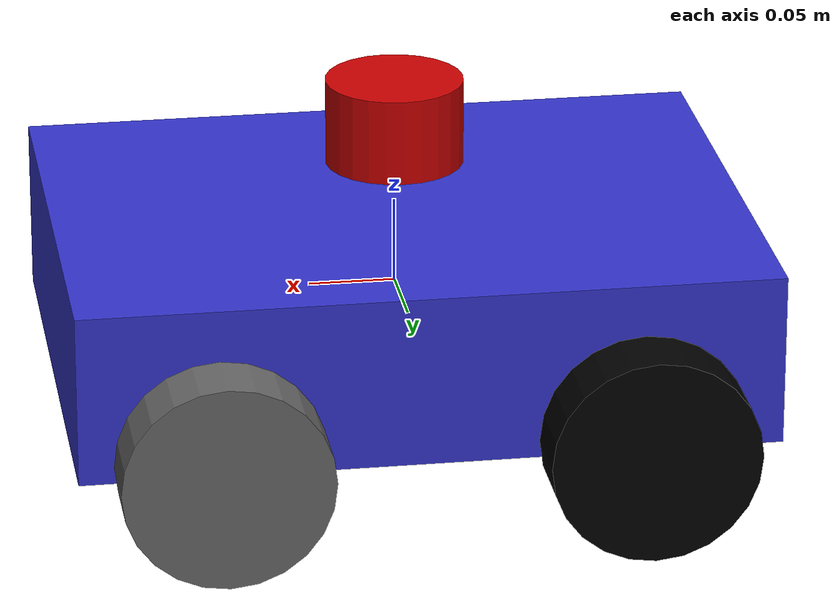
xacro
<?xml version="1.0"?>
<robot name="diff_robot" xmlns:xacro="http://ros.org/wiki/xacro">

  <!-- BASE LINK -->
  <link name="base_link">
    <visual>
      <geometry><box size="0.4 0.3 0.1"/></geometry>
      <material name="blue"><color rgba="0.2 0.2 0.8 1"/></material>
    </visual>
    <collision><geometry><box size="0.4 0.3 0.1"/></geometry></collision>
    <inertial>
      <mass value="2.0"/>
      <inertia ixx="0.01" iyy="0.01" izz="0.01"
               ixy="0" ixz="0" iyz="0"/>
    </inertial>
  </link>

  <!-- ══════════ REAR LEFT WHEEL (differential driven) ══════════ -->
  <link name="rear_left_wheel">
    <visual>
      <geometry><cylinder radius="0.06" length="0.04"/></geometry>
      <material name="black"><color rgba="0 0 0 1"/></material>
    </visual>
    <collision><geometry><cylinder radius="0.06" length="0.04"/></geometry></collision>
    <inertial>
      <mass value="0.3"/>
      <inertia ixx="0.0003" iyy="0.0003" izz="0.0003"
               ixy="0" ixz="0" iyz="0"/>
    </inertial>
  </link>
  <joint name="rear_left_wheel_joint" type="continuous">
    <parent link="base_link"/>
    <child link="rear_left_wheel"/>
    <origin xyz="-0.12 0.17 -0.04" rpy="1.5708 0 0"/>
    <axis xyz="0 0 1"/>
  </joint>

  <!-- ══════════ REAR RIGHT WHEEL (differential driven) ══════════ -->
  <link name="rear_right_wheel">
    <visual>
      <geometry><cylinder radius="0.06" length="0.04"/></geometry>
      <material name="black"><color rgba="0 0 0 1"/></material>
    </visual>
    <collision><geometry><cylinder radius="0.06" length="0.04"/></geometry></collision>
    <inertial>
      <mass value="0.3"/>
      <inertia ixx="0.0003" iyy="0.0003" izz="0.0003"
               ixy="0" ixz="0" iyz="0"/>
    </inertial>
  </link>
  <joint name="rear_right_wheel_joint" type="continuous">
    <parent link="base_link"/>
    <child link="rear_right_wheel"/>
    <origin xyz="-0.12 -0.17 -0.04" rpy="1.5708 0 0"/>
    <axis xyz="0 0 1"/>
  </joint>

  <!-- ══════════ FRONT LEFT WHEEL (passive/fixed steering) ══════════ -->
  <link name="front_left_wheel">
    <visual>
      <geometry><cylinder radius="0.06" length="0.04"/></geometry>
      <material name="grey"><color rgba="0.4 0.4 0.4 1"/></material>
    </visual>
    <collision><geometry><cylinder radius="0.06" length="0.04"/></geometry></collision>
    <inertial>
      <mass value="0.3"/>
      <inertia ixx="0.0003" iyy="0.0003" izz="0.0003"
               ixy="0" ixz="0" iyz="0"/>
    </inertial>
  </link>
  <joint name="front_left_wheel_joint" type="continuous">
    <parent link="base_link"/>
    <child link="front_left_wheel"/>
    <origin xyz="0.12 0.17 -0.04" rpy="1.5708 0 0"/>
    <axis xyz="0 0 1"/>
  </joint>

  <!-- ══════════ FRONT RIGHT WHEEL (passive/fixed steering) ══════════ -->
  <link name="front_right_wheel">
    <visual>
      <geometry><cylinder radius="0.06" length="0.04"/></geometry>
      <material name="grey"><color rgba="0.4 0.4 0.4 1"/></material>
    </visual>
    <collision><geometry><cylinder radius="0.06" length="0.04"/></geometry></collision>
    <inertial>
      <mass value="0.3"/>
      <inertia ixx="0.0003" iyy="0.0003" izz="0.0003"
               ixy="0" ixz="0" iyz="0"/>
    </inertial>
  </link>
  <joint name="front_right_wheel_joint" type="continuous">
    <parent link="base_link"/>
    <child link="front_right_wheel"/>
    <origin xyz="0.12 -0.17 -0.04" rpy="1.5708 0 0"/>
    <axis xyz="0 0 1"/>
  </joint>

  <!-- ══════════ LIDAR ══════════ -->
  <link name="lidar_link">
    <visual>
      <geometry><cylinder radius="0.04" length="0.05"/></geometry>
      <material name="red"><color rgba="0.8 0 0 1"/></material>
    </visual>
    <collision><geometry><cylinder radius="0.04" length="0.05"/></geometry></collision>
    <inertial>
      <mass value="0.1"/>
      <inertia ixx="0.00005" iyy="0.00005" izz="0.00005"
               ixy="0" ixz="0" iyz="0"/>
    </inertial>
  </link>
  <joint name="lidar_joint" type="fixed">
    <parent link="base_link"/>
    <child link="lidar_link"/>
    <origin xyz="0 0 0.1"/>
  </joint>

  <!-- ══════════ GAZEBO DIFF DRIVE (rear wheels only) ══════════ -->
  <gazebo>
    <plugin name="diff_drive" filename="libgazebo_ros_diff_drive.so">
      <ros><namespace>/</namespace></ros>
      <update_rate>30</update_rate>
      <left_joint>rear_left_wheel_joint</left_joint>
      <right_joint>rear_right_wheel_joint</right_joint>
      <wheel_separation>0.34</wheel_separation>
      <wheel_diameter>0.12</wheel_diameter>
      <max_wheel_torque>20</max_wheel_torque>
      <max_wheel_acceleration>1.0</max_wheel_acceleration>
      <command_topic>cmd_vel</command_topic>
      <publish_odom>true</publish_odom>
      <publish_odom_tf>true</publish_odom_tf>
      <publish_wheel_tf>true</publish_wheel_tf>
      <odometry_frame>odom</odometry_frame>
      <robot_base_frame>base_link</robot_base_frame>
    </plugin>
  </gazebo>

  <!-- ══════════ WHEEL FRICTION (all 4 wheels) ══════════ -->
  <gazebo reference="rear_left_wheel">
    <mu1>1.0</mu1><mu2>1.0</mu2>
    <material>Gazebo/Black</material>
  </gazebo>
  <gazebo reference="rear_right_wheel">
    <mu1>1.0</mu1><mu2>1.0</mu2>
    <material>Gazebo/Black</material>
  </gazebo>
  <gazebo reference="front_left_wheel">
    <mu1>0.5</mu1><mu2>0.5</mu2>
    <material>Gazebo/Grey</material>
  </gazebo>
  <gazebo reference="front_right_wheel">
    <mu1>0.5</mu1><mu2>0.5</mu2>
    <material>Gazebo/Grey</material>
  </gazebo>

  <!-- ══════════ LIDAR SENSOR ══════════ -->
  <gazebo reference="lidar_link">
    <sensor name="lidar" type="ray">
      <always_on>true</always_on>
      <visualize>true</visualize>
      <update_rate>30</update_rate>
      <ray>
        <scan>
          <horizontal>
            <samples>360</samples>
            <resolution>1</resolution>
            <min_angle>-3.14159</min_angle>
            <max_angle>3.14159</max_angle>
          </horizontal>
        </scan>
        <range>
          <min>0.15</min>
          <max>8.0</max>
          <resolution>0.01</resolution>
        </range>
        <noise>
          <type>gaussian</type>
          <mean>0.0</mean>
          <stddev>0.01</stddev>
        </noise>
      </ray>
      <plugin name="lidar_plugin" filename="libgazebo_ros_ray_sensor.so">
        <ros><remapping>~/out:=scan</remapping></ros>
        <output_type>sensor_msgs/LaserScan</output_type>
        <frame_name>lidar_link</frame_name>
      </plugin>
    </sensor>
  </gazebo>

</robot>
